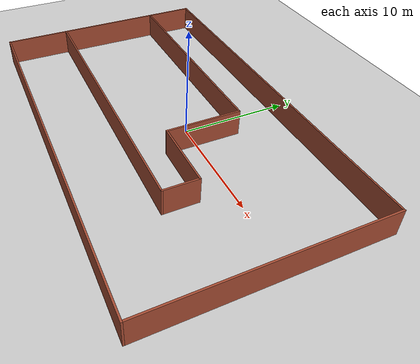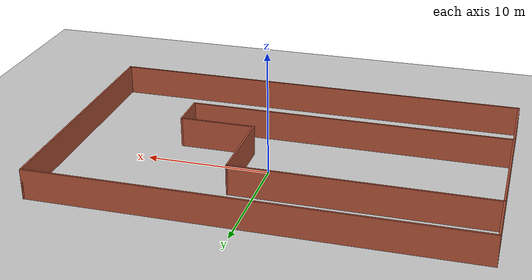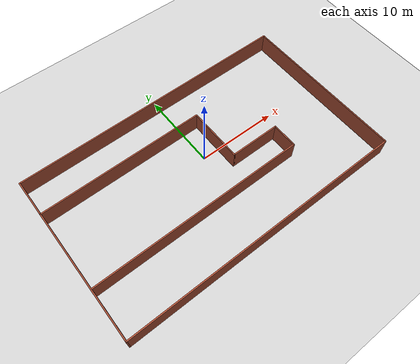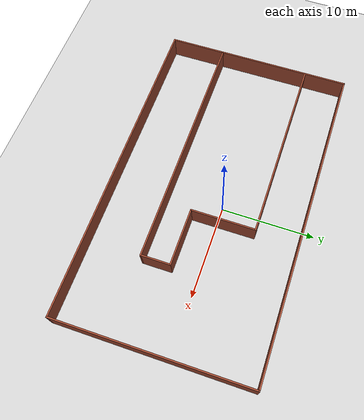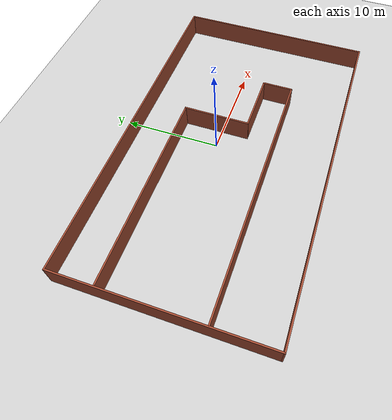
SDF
<sdf version="1.6">
 <world name="default">
  <light name="sun" type="directional">
   <pose>0 0 10 0 -0 0</pose>
   <diffuse>0.8 0.8 0.8 1</diffuse>
   <specular>0.2 0.2 0.2 1</specular>
   <attenuation>
    <range>1000</range>
    <constant>0.9</constant>
    <linear>0.01</linear>
    <quadratic>0.001</quadratic>
   </attenuation>
   <direction>-0.5 0.1 -0.9</direction>
  </light>
  <model name="ground_plane">
   <static>1</static>
   <link name="link">
    <collision name="collision">
     <geometry><plane><normal>0 0 1</normal><size>100 100</size></plane></geometry>
     <surface><friction><ode><mu>100</mu><mu2>50</mu2></ode></friction></surface>
    </collision>
    <visual name="visual">
     <cast_shadows>0</cast_shadows>
     <geometry><plane><normal>0 0 1</normal><size>100 100</size></plane></geometry>
     <material>
      <script><uri>file://media/materials/scripts/gazebo.material</uri><name>Gazebo/Grey</name></script>
     </material>
    </visual>
   </link>
  </model>
  <gravity>0 0 -9.8</gravity>
  <magnetic_field>6e-06 2.3e-05 -4.2e-05</magnetic_field>
  <atmosphere type="adiabatic"/>
  <physics name="default_physics" default="0" type="ode">
   <max_step_size>0.001</max_step_size>
   <real_time_factor>1</real_time_factor>
   <real_time_update_rate>1000</real_time_update_rate>
  </physics>
  <scene><ambient>0.4 0.4 0.4 1</ambient><background>0.7 0.7 0.7 1</background><shadows>1</shadows></scene>
  <spherical_coordinates>
   <surface_model>EARTH_WGS84</surface_model>
   <latitude_deg>0</latitude_deg>
   <longitude_deg>0</longitude_deg>
   <elevation>0</elevation>
   <heading_deg>0</heading_deg>
  </spherical_coordinates>
  <model name="coverage_path">
   <pose>-0.91405 -1.62048 0 0 -0 0</pose>
   <link name="Wall_0">
    <collision name="Wall_0_Collision">
     <geometry><box><size>35 0.15 2.5</size></box></geometry>
     <pose>0 0 1.25 0 -0 0</pose>
    </collision>
    <visual name="Wall_0_Visual">
     <pose>0 0 1.25 0 -0 0</pose>
     <geometry><box><size>35 0.15 2.5</size></box></geometry>
     <material>
      <script><uri>file://media/materials/scripts/gazebo.material</uri><name>Gazebo/Bricks</name></script>
      <ambient>1 1 1 1</ambient>
     </material>
     <meta><layer>0</layer></meta>
    </visual>
    <pose>0 10.3 0 0 -0 0</pose>
   </link>
   <link name="Wall_1">
    <collision name="Wall_1_Collision">
     <geometry><box><size>20.75 0.15 2.5</size></box></geometry>
     <pose>0 0 1.25 0 -0 0</pose>
    </collision>
    <visual name="Wall_1_Visual">
     <pose>0 0 1.25 0 -0 0</pose>
     <geometry><box><size>20.75 0.15 2.5</size></box></geometry>
     <material>
      <script><uri>file://media/materials/scripts/gazebo.material</uri><name>Gazebo/Bricks</name></script>
      <ambient>1 1 1 1</ambient>
     </material>
     <meta><layer>0</layer></meta>
    </visual>
    <pose>17.425 0 0 0 0 -1.5708</pose>
   </link>
   <link name="Wall_10">
    <collision name="Wall_10_Collision">
     <geometry><box><size>26.5 0.15 2.5</size></box></geometry>
     <pose>0 0 1.25 0 -0 0</pose>
    </collision>
    <visual name="Wall_10_Visual">
     <pose>0 0 1.25 0 -0 0</pose>
     <geometry><box><size>26.5 0.15 2.5</size></box></geometry>
     <material>
      <script><uri>file://media/materials/scripts/gazebo.material</uri><name>Gazebo/Bricks</name></script>
      <ambient>1 1 1 1</ambient>
     </material>
     <meta><layer>0</layer></meta>
    </visual>
    <pose>-4.13759 -4.23742 0 0 -0 3.14159</pose>
   </link>
   <link name="Wall_2">
    <collision name="Wall_2_Collision">
     <geometry><box><size>35 0.15 2.5</size></box></geometry>
     <pose>0 0 1.25 0 -0 0</pose>
    </collision>
    <visual name="Wall_2_Visual">
     <pose>0 0 1.25 0 -0 0</pose>
     <geometry><box><size>35 0.15 2.5</size></box></geometry>
     <material>
      <script><uri>file://media/materials/scripts/gazebo.material</uri><name>Gazebo/Bricks</name></script>
      <ambient>1 1 1 1</ambient>
     </material>
     <meta><layer>0</layer></meta>
    </visual>
    <pose>0 -10.3 0 0 -0 3.14159</pose>
   </link>
   <link name="Wall_3">
    <collision name="Wall_3_Collision">
     <geometry><box><size>20.75 0.15 2.5</size></box></geometry>
     <pose>0 0 1.25 0 -0 0</pose>
    </collision>
    <visual name="Wall_3_Visual">
     <pose>0 0 1.25 0 -0 0</pose>
     <geometry><box><size>20.75 0.15 2.5</size></box></geometry>
     <material>
      <script><uri>file://media/materials/scripts/gazebo.material</uri><name>Gazebo/Bricks</name></script>
      <ambient>1 1 1 1</ambient>
     </material>
     <meta><layer>0</layer></meta>
    </visual>
    <pose>-17.425 0 0 0 -0 1.5708</pose>
   </link>
   <link name="Wall_6">
    <collision name="Wall_6_Collision">
     <geometry><box><size>20.5 0.15 2.5</size></box></geometry>
     <pose>0 0 1.25 0 -0 0</pose>
    </collision>
    <visual name="Wall_6_Visual">
     <pose>0 0 1.25 0 -0 0</pose>
     <geometry><box><size>20.5 0.15 2.5</size></box></geometry>
     <material>
      <script><uri>file://media/materials/scripts/gazebo.material</uri><name>Gazebo/Bricks</name></script>
      <ambient>1 1 1 1</ambient>
     </material>
     <meta><layer>0</layer></meta>
    </visual>
    <pose>-7.23759 5.71258 0 0 -0 0</pose>
   </link>
   <link name="Wall_7">
    <collision name="Wall_7_Collision">
     <geometry><box><size>7 0.15 2.5</size></box></geometry>
     <pose>0 0 1.25 0 -0 0</pose>
    </collision>
    <visual name="Wall_7_Visual">
     <pose>0 0 1.25 0 -0 0</pose>
     <geometry><box><size>7 0.15 2.5</size></box></geometry>
     <material>
      <script><uri>file://media/materials/scripts/gazebo.material</uri><name>Gazebo/Bricks</name></script>
      <ambient>1 1 1 1</ambient>
     </material>
     <meta><layer>0</layer></meta>
    </visual>
    <pose>2.93741 2.28758 0 0 0 -1.5708</pose>
   </link>
   <link name="Wall_8">
    <collision name="Wall_8_Collision">
     <geometry><box><size>6.25 0.15 2.5</size></box></geometry>
     <pose>0 0 1.25 0 -0 0</pose>
    </collision>
    <visual name="Wall_8_Visual">
     <pose>0 0 1.25 0 -0 0</pose>
     <geometry><box><size>6.25 0.15 2.5</size></box></geometry>
     <material>
      <script><uri>file://media/materials/scripts/gazebo.material</uri><name>Gazebo/Bricks</name></script>
      <ambient>1 1 1 1</ambient>
     </material>
     <meta><layer>0</layer></meta>
    </visual>
    <pose>5.98741 -1.13742 0 0 -0 0</pose>
   </link>
   <link name="Wall_9">
    <collision name="Wall_9_Collision">
     <geometry><box><size>3.25 0.15 2.5</size></box></geometry>
     <pose>0 0 1.25 0 -0 0</pose>
    </collision>
    <visual name="Wall_9_Visual">
     <pose>0 0 1.25 0 -0 0</pose>
     <geometry><box><size>3.25 0.15 2.5</size></box></geometry>
     <material>
      <script><uri>file://media/materials/scripts/gazebo.material</uri><name>Gazebo/Bricks</name></script>
      <ambient>1 1 1 1</ambient>
     </material>
     <meta><layer>0</layer></meta>
    </visual>
    <pose>9.03741 -2.68742 0 0 0 -1.5708</pose>
   </link>
   <static>1</static>
  </model>
 </world>
</sdf>
